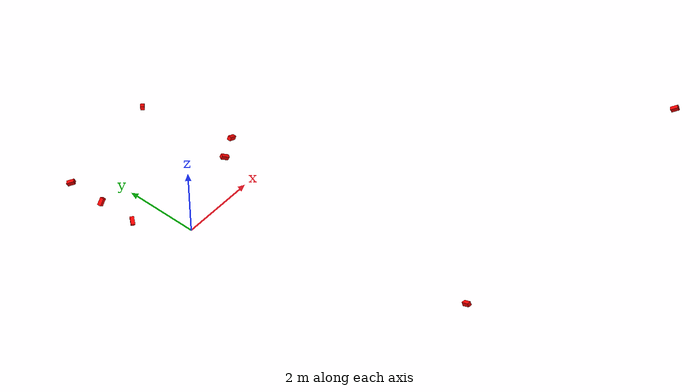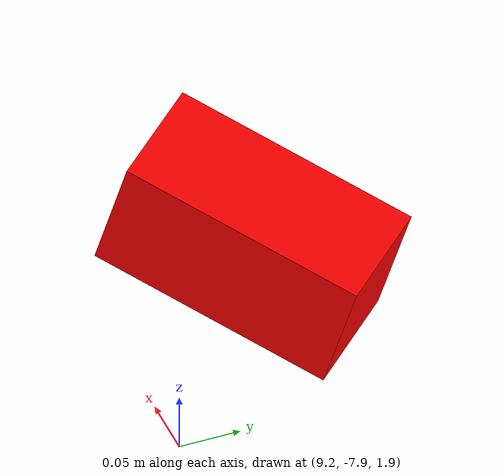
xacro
<?xml version="1.0"?>
<robot name="camera_network" xmlns:xacro="http://www.ros.org/wiki/xacro">

  <xacro:include filename="$(find sparse_dynamic_calibration)/urdf/create_kinect.urdf.xacro" />

  <!-- setup empty world -->
  <link name="world"/>

  <xacro:create_kinect name="kinect_01" parent="world" xyz="1.6 0 2" rpy="0 0.45 0" fps="2"/>
  <xacro:create_kinect name="kinect_02" parent="world" xyz="1 -0.3 2" rpy="0 0.45 -0.6" fps="2"/>
  <xacro:create_kinect name="kinect_03" parent="world" xyz="1 -7.8 2" rpy="0 0.45 1.5" fps="2"/>
  <xacro:create_kinect name="kinect_04" parent="world" xyz="9.3 -7.8 2" rpy="0 0.45 2.2" fps="2"/>

  <xacro:create_kinect name="kinect_05" parent="world" xyz="-2 2 2" rpy="0 0.45 2.2" fps="2"/>
  <xacro:create_kinect name="kinect_06" parent="world" xyz="-2 1 2" rpy="0 0.9 3.14" fps="2"/>
  <xacro:create_kinect name="kinect_07" parent="world" xyz="-2 0 2" rpy="0 0.45 4.04" fps="2"/>

  <xacro:create_kinect name="kinect_08" parent="world" xyz="1 2.4 2" rpy="0 0.45 0.75" fps="2"/>
</robot>

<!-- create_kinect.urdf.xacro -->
<root xmlns:sensor="http://playerstage.sourceforge.net/gazebo/xmlschema/#sensor"
      xmlns:controller="http://playerstage.sourceforge.net/gazebo/xmlschema/#controller"
      xmlns:interface="http://playerstage.sourceforge.net/gazebo/xmlschema/#interface"
      xmlns:xacro="http://ros.org/wiki/xacro">

<xacro:macro name="create_kinect" params="name parent xyz rpy fps:=30 fov:=1.3962634 width:=1920 height:=1080 use_depth:=true distortion:=0.0">

  <joint name="${name}_joint" type="fixed">
    <origin xyz="${xyz}" rpy="${rpy}"/>
    <parent link="${parent}"/>
    <child link="${name}_link"/>
  </joint>

  <joint name="${name}_optical_joint" type="fixed">
    <origin xyz="0 0 0" rpy="${-pi/2} 0 ${-pi/2}"/>
    <parent link="${name}_link"/>
    <child link="${name}_optical_link"/>
  </joint>

  <link name="${name}_link">
    <collision>
      <origin xyz="0 0 0" rpy="0 0 0"/>
      <geometry>
        <box size="0.2 0.1 0.1"/>
      </geometry>
    </collision>

    <visual>
      <origin xyz="0 0 0" rpy="0 0 0"/>
      <geometry>
        <box size="0.2 0.1 0.1"/>
      </geometry>
      <material name="Red">
        <color rgba="1 0 0 1"/>
      </material>
    </visual>

    <inertial>
      <mass value="1e-5" />
      <origin xyz="0 0 0" rpy="0 0 0"/>
      <inertia ixx="1e-6" ixy="0" ixz="0" iyy="1e-6" iyz="0" izz="1e-6" />
    </inertial>
  </link>

  <link name="${name}_optical_link">
  </link>

  <!-- camera gazebo plugin -->
  <gazebo reference="${name}_link">
    <material>Gazebo/Red</material>
    <sensor type="depth" name="${name}">
      <update_rate>${fps}</update_rate>
      <camera name="head">
        <horizontal_fov>${fov}</horizontal_fov>
        <image>
          <width>${width}</width>
          <height>${height}</height>
          <format>R8G8B8</format>
        </image>
        <clip>
          <near>0.02</near>
          <far>20.0</far>
        </clip>
        <noise>
          <type>gaussian</type>
          <mean>0.0</mean>
          <stddev>0.007</stddev>
        </noise>
      </camera>
      <xacro:if value="${use_depth}">
        <plugin name="${name}_ir_controller" filename="libgazebo_ros_openni_kinect.so">
        	<baseline>0.2</baseline>
          <alwaysOn>true</alwaysOn>
          <updateRate>1.0</updateRate>
          <cameraName>${name}</cameraName>
          <imageTopicName>rgb/image</imageTopicName>
          <depthImageTopicName>depth/image</depthImageTopicName>
          <pointCloudTopicName>depth/points</pointCloudTopicName>
          <cameraInfoTopicName>rgb/camera_info</cameraInfoTopicName>
          <depthImageCameraInfoTopicName>depth/camera_info</depthImageCameraInfoTopicName>
          <frameName>${name}_optical_link</frameName>
          <pointCloudCutoff>0.3</pointCloudCutoff>
          <distortionK1>${distortion}</distortionK1>
          <distortionK2>${distortion}</distortionK2>
          <distortionK3>${distortion}</distortionK3>
          <distortionT1>${distortion}</distortionT1>
          <distortionT2>${distortion}</distortionT2>
          <CxPrime>0</CxPrime>
          <Cx>0</Cx>
          <Cy>0</Cy>
          <foculLength>0</foculLength>
          <hackBaseline>0</hackBaseline>
        </plugin>
    </xacro:if>
    <xacro:unless value="${use_depth}">
        <plugin name="${name}_ir_controller" filename="libgazebo_ros_camera.so">
          <alwaysOn>true</alwaysOn>
          <updateRate>0.0</updateRate>
          <cameraName>${name}</cameraName>
          <imageTopicName>rgb/image</imageTopicName>
          <cameraInfoTopicName>rgb/camera_info</cameraInfoTopicName>
          <frameName>${name}_optical_link</frameName>
          <hackBaseline>0.07</hackBaseline>
          <distortionK1>${distortion}</distortionK1>
          <distortionK2>${distortion}</distortionK2>
          <distortionK3>${distortion}</distortionK3>
          <distortionT1>${distortion}</distortionT1>
          <distortionT2>${distortion}</distortionT2>
        </plugin>
    </xacro:unless>
    </sensor>
  </gazebo>
</xacro:macro>

</root>
